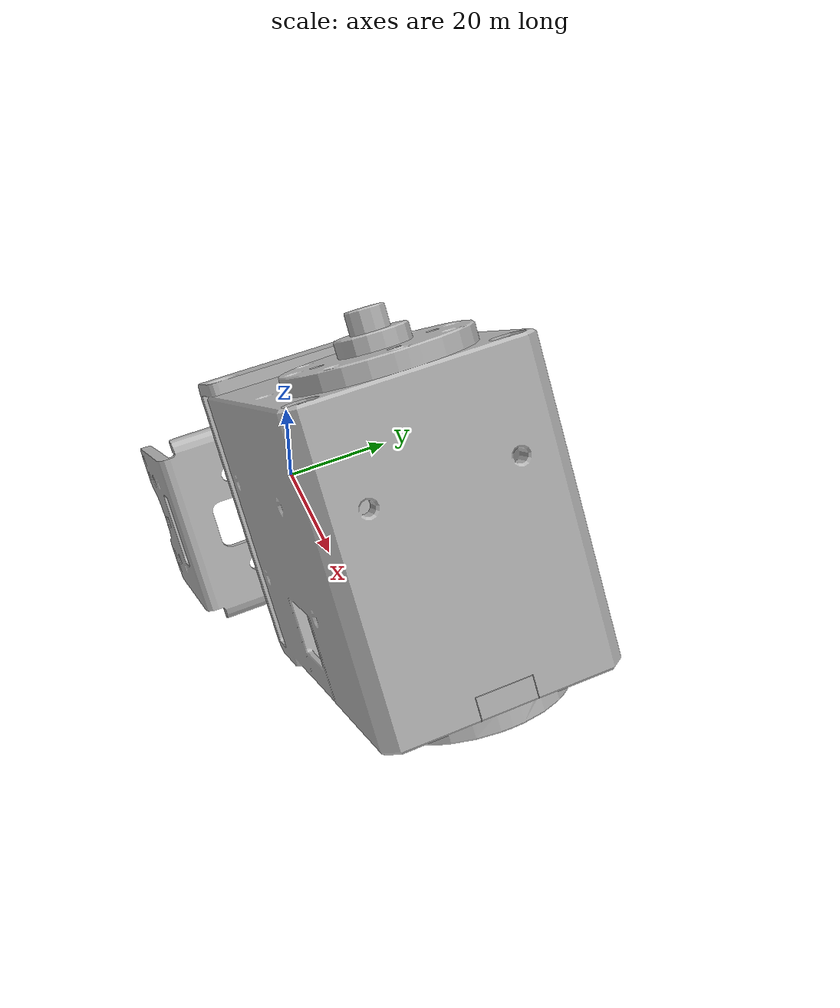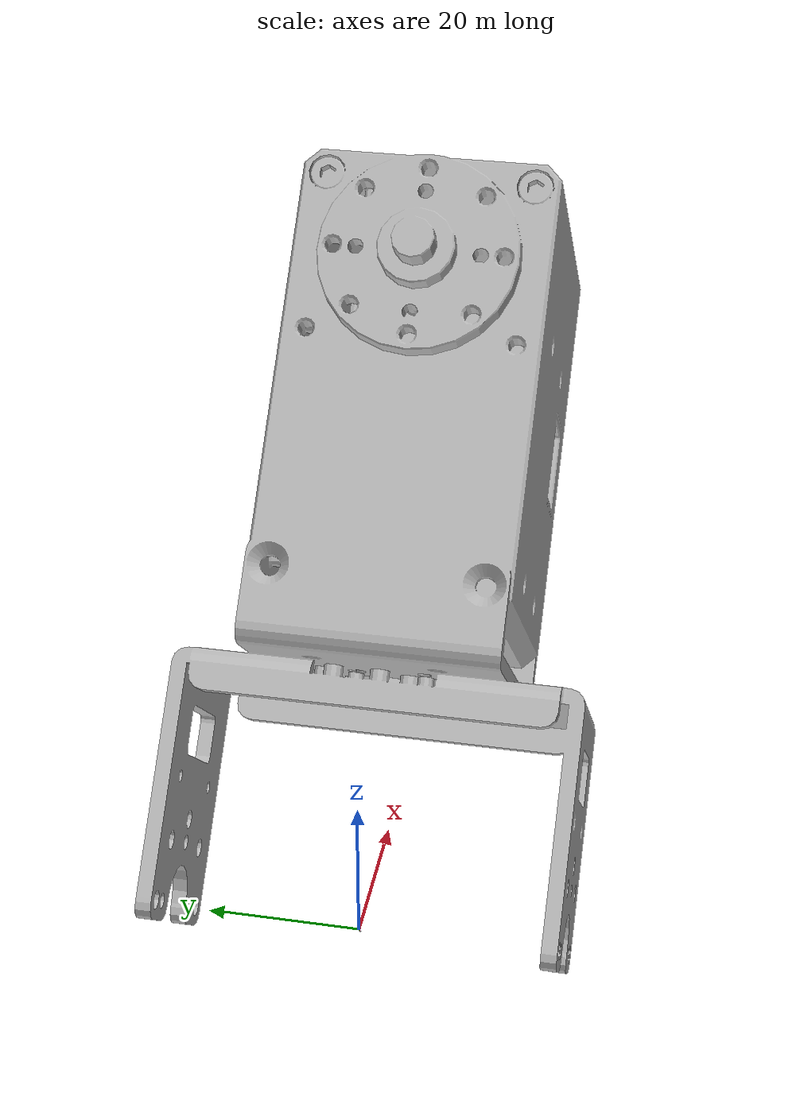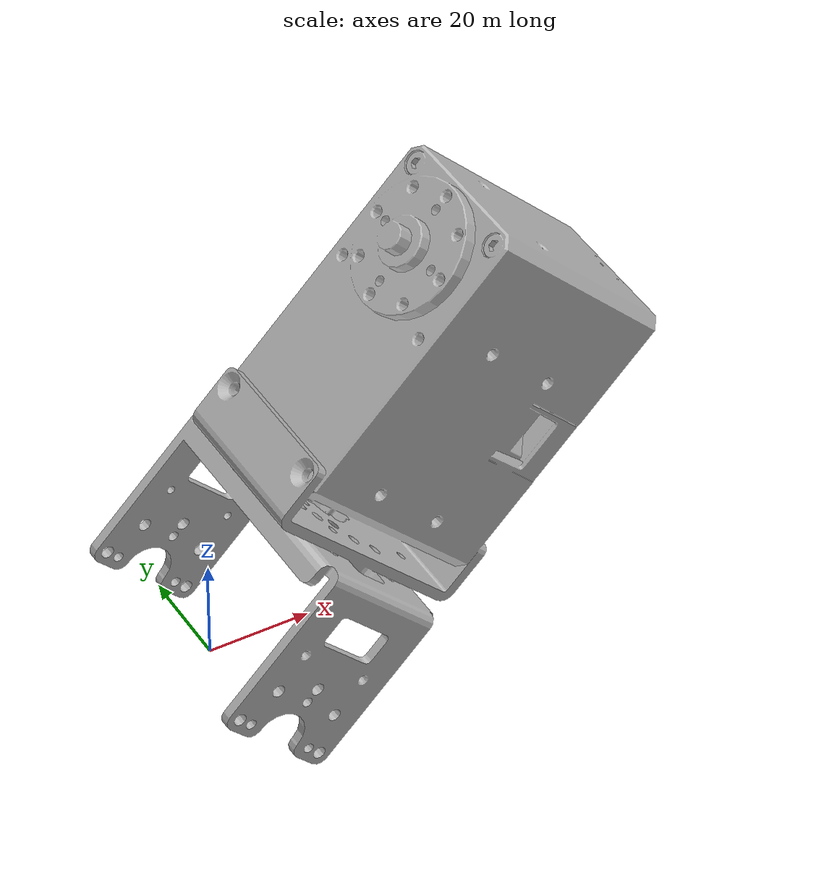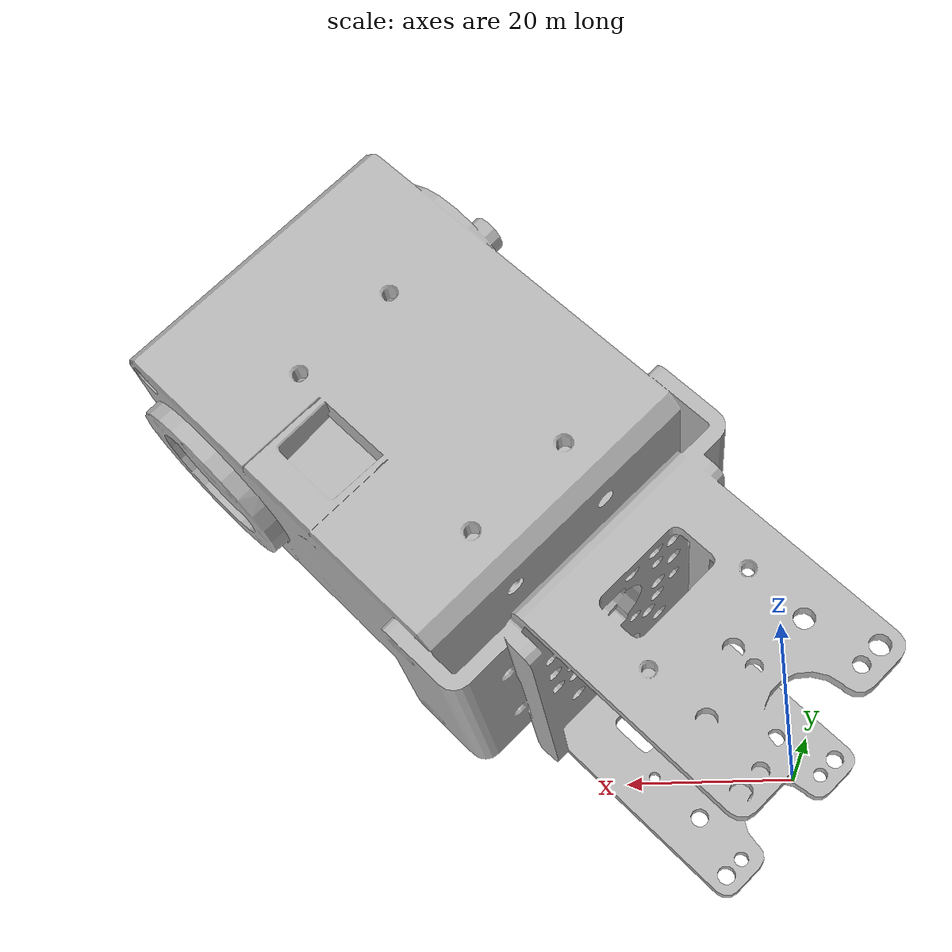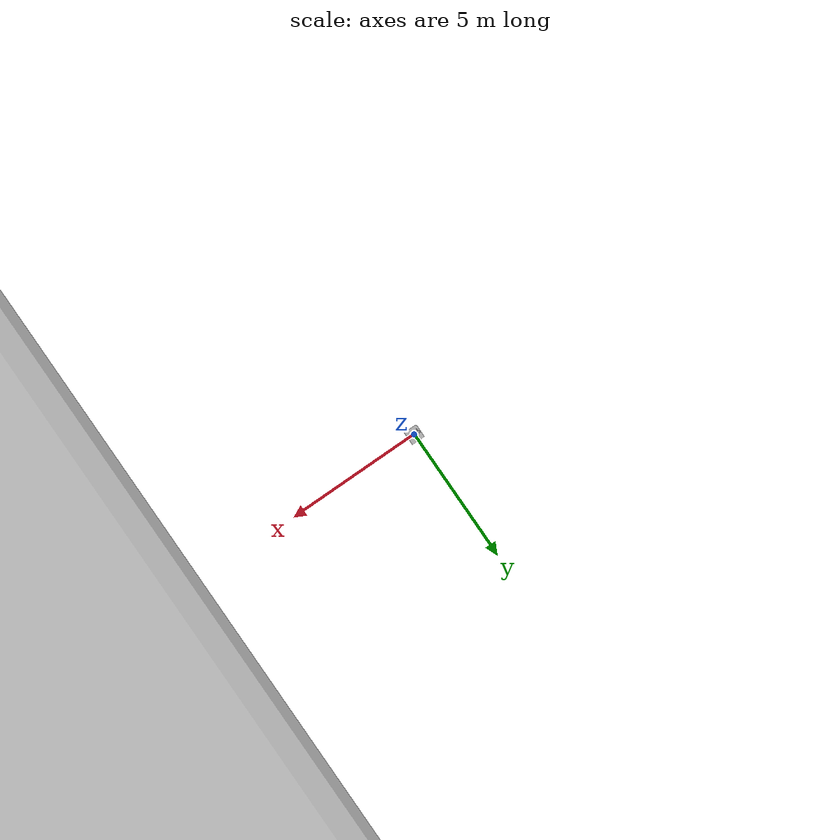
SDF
<?xml version="1.0" encoding="UTF-8"?>
<!--
This file is part of the ProVANT simulator project.
Licensed under the terms of the MIT open source license. More details at
https: //github.com/Guiraffo/ProVANT-Simulator/blob/master/LICENSE.md
-->
<!-- Note: This file is only contained for example purposes. Please
use to URDF version of this model. -->
<sdf version='1.7'>
  <model name='robotic_manipulator'>
    <joint name='base_fixed' type='fixed'>
      <pose relative_to='__model__'>0 0 0 0 -0 0</pose>
      <parent>world</parent>
      <child>base_link</child>
    </joint>
    <link name='base_link'>
      <pose relative_to='base_fixed'>0 0 0 0 -0 0</pose>
      <inertial>
        <pose>-0.001633 -0 0.041253 0 -0 0</pose>
        <mass>5.9348</mass>
        <inertia>
          <ixx>0.069314</ixx>
          <ixy>-7.9117e-09</ixy>
          <ixz>0.00044735</ixz>
          <iyy>0.069119</iyy>
          <iyz>3.8918e-08</iyz>
          <izz>0.12076</izz>
        </inertia>
      </inertial>
      <collision name='base_link_collision'>
        <pose>0 0 0 0 -0 0</pose>
        <geometry>
          <mesh>
            <scale>1 1 1</scale>
            <uri>model://arm_model/meshes/base_link.STL</uri>
          </mesh>
        </geometry>
        <surface>
          <contact>
            <ode />
          </contact>
          <friction>
            <ode />
          </friction>
        </surface>
      </collision>
      <visual name='base_link_visual'>
        <pose>0 0 0 0 -0 0</pose>
        <geometry>
          <mesh>
            <scale>1 1 1</scale>
            <uri>model://arm_model/meshes/base_link.STL</uri>
          </mesh>
        </geometry>
      </visual>
    </link>
    <joint name='base_link1' type='revolute'>
      <pose relative_to='base_link'>-0.055 0 0.17 -1.5708 -1.3513 3.14159</pose>
      <parent>base_link</parent>
      <child>link1</child>
      <axis>
        <xyz>0 0 1</xyz>
        <limit>
          <lower>-1.5708</lower>
          <upper>1.5708</upper>
          <effort>100</effort>
          <velocity>20</velocity>
        </limit>
        <dynamics>
          <spring_reference>0</spring_reference>
          <spring_stiffness>0</spring_stiffness>
        </dynamics>
      </axis>
      <physics>
        <provide_feedback>1</provide_feedback>
        <ode>
          <limit>
            <cfm>0</cfm>
            <erp>0.2</erp>
          </limit>
          <provide_feedback>1</provide_feedback>
        </ode>
      </physics>
    </joint>
    <link name='link1'>
      <pose relative_to='base_link1'>0 0 0 0 -0 0</pose>
      <inertial>
        <pose>0.28436 0 0.000931 0 -0 0</pose>
        <mass>1.8828</mass>
        <inertia>
          <ixx>0.0051206</ixx>
          <ixy>1.917e-08</ixy>
          <ixz>1.3958e-08</ixz>
          <iyy>0.047785</iyy>
          <iyz>-1.0301e-09</iyz>
          <izz>0.04779</izz>
        </inertia>
      </inertial>
      <collision name='link1_collision'>
        <pose>0 0 0 0 -0 0</pose>
        <geometry>
          <mesh>
            <scale>1 1 1</scale>
            <uri>model://arm_model/meshes/link1.STL</uri>
          </mesh>
        </geometry>
      </collision>
      <visual name='link1_visual'>
        <pose>0 0 0 0 -0 0</pose>
        <geometry>
          <mesh>
            <scale>1 1 1</scale>
            <uri>model://arm_model/meshes/link1.STL</uri>
          </mesh>
        </geometry>
      </visual>
    </link>
    <joint name='link1_link2' type='revolute'>
      <pose relative_to='link1'>0.554 0 0.1265 0 0 -0.99459</pose>
      <parent>link1</parent>
      <child>link2</child>
      <axis>
        <xyz>0 0 1</xyz>
        <limit>
          <lower>-1.5708</lower>
          <upper>1.5708</upper>
          <effort>100</effort>
          <velocity>20</velocity>
        </limit>
        <dynamics>
          <spring_reference>0</spring_reference>
          <spring_stiffness>0</spring_stiffness>
        </dynamics>
      </axis>
    </joint>
    <link name='link2'>
      <pose relative_to='link1_link2'>0 0 0 0 -0 0</pose>
      <inertial>
        <pose>0.51681 0.06743 -0.021574 0 -0 0</pose>
        <mass>4.3972</mass>
        <inertia>
          <ixx>0.0091558</ixx>
          <ixy>0.00017039</ixy>
          <ixz>-9.1435e-05</ixz>
          <iyy>0.056149</iyy>
          <iyz>-9.3814e-06</iyz>
          <izz>0.056624</izz>
        </inertia>
      </inertial>
      <collision name='link2_collision'>
        <pose>0 0 0 0 -0 0</pose>
        <geometry>
          <mesh>
            <scale>1 1 1</scale>
            <uri>model://arm_model/meshes/link2.STL</uri>
          </mesh>
        </geometry>
      </collision>
      <visual name='link2_visual'>
        <pose>0 0 0 0 -0 0</pose>
        <geometry>
          <mesh>
            <scale>1 1 1</scale>
            <uri>model://arm_model/meshes/link2.STL</uri>
          </mesh>
        </geometry>
      </visual>
    </link>
    <plugin name='actuator' filename='libgazebo_ros_ArmForces.so'>
      <joint1>base_link1</joint1>
      <joint2>link1_link2</joint2>
      <joint1_torque_topic>joint1_torque</joint1_torque_topic>
      <joint2_torque_topic>joint2_torque</joint2_torque_topic>
    </plugin>
    <static>0</static>
  </model>
</sdf>
